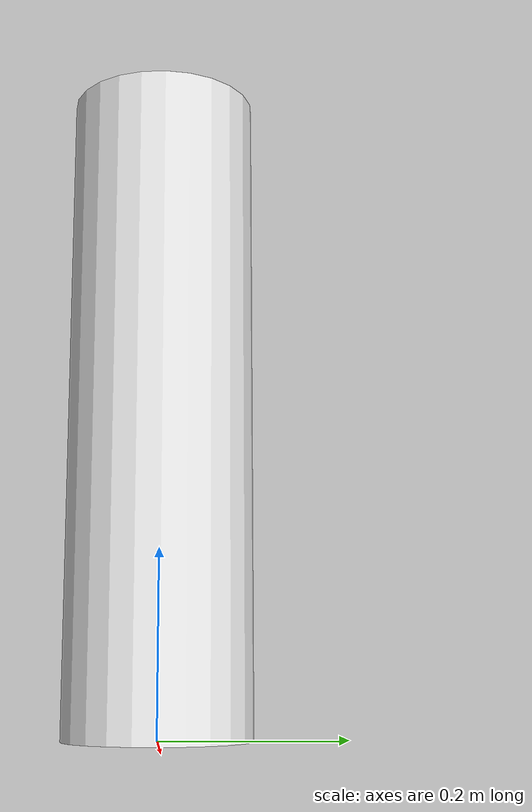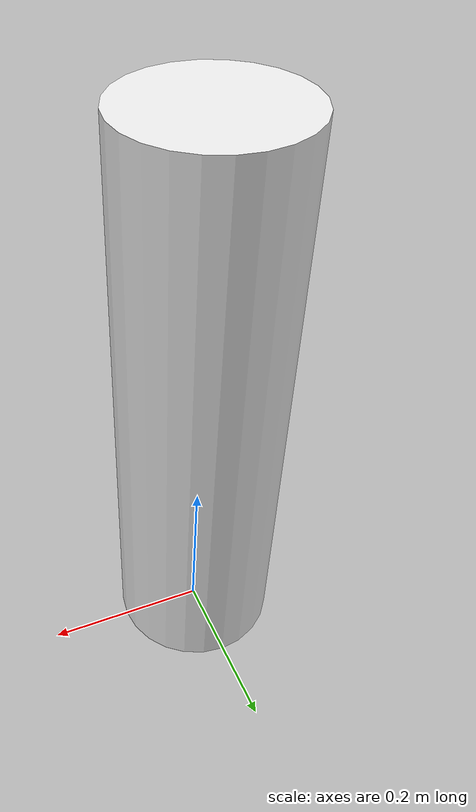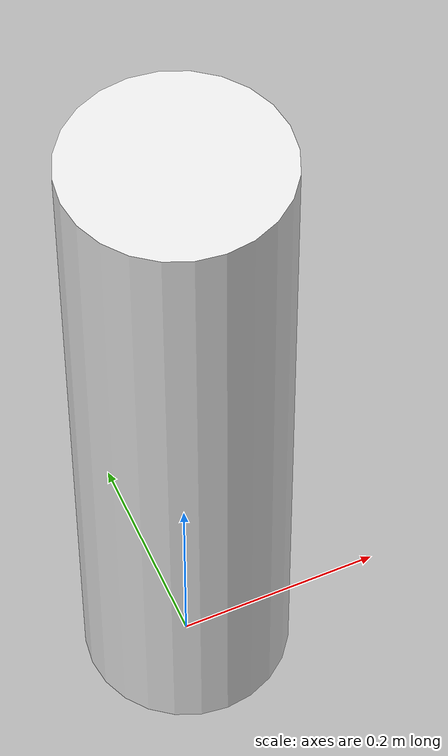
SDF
<?xml version="1.0" encoding="utf-8"?>
<!-- |    This document was autogenerated by xacro from pillar.sdf.xacro               | -->
<!-- |    EDITING THIS FILE BY HAND IS NOT RECOMMENDED                                 | -->
<sdf version="1.5" xmlns:xacro="http://www.ros.org/wiki/xacro">
  <model name="pillar">
    <static>true</static>
    <link name="pillar">
      <collision name="pillar">
        <geometry>
          <cylinder>
            <radius>0.1</radius>
            <length>0.7</length>
          </cylinder>
        </geometry>
        <pose>0 0 0.35 0 0 0</pose>
      </collision>
      <visual name="pillar">
        <geometry>
          <cylinder>
            <radius>0.1</radius>
            <length>0.7</length>
          </cylinder>
        </geometry>
        <pose>0 0 0.35 0 0 0</pose>
        <material>
          <script>
            <name>Gazebo/White</name>
          </script>
        </material>
      </visual>
    </link>
  </model>
</sdf>
